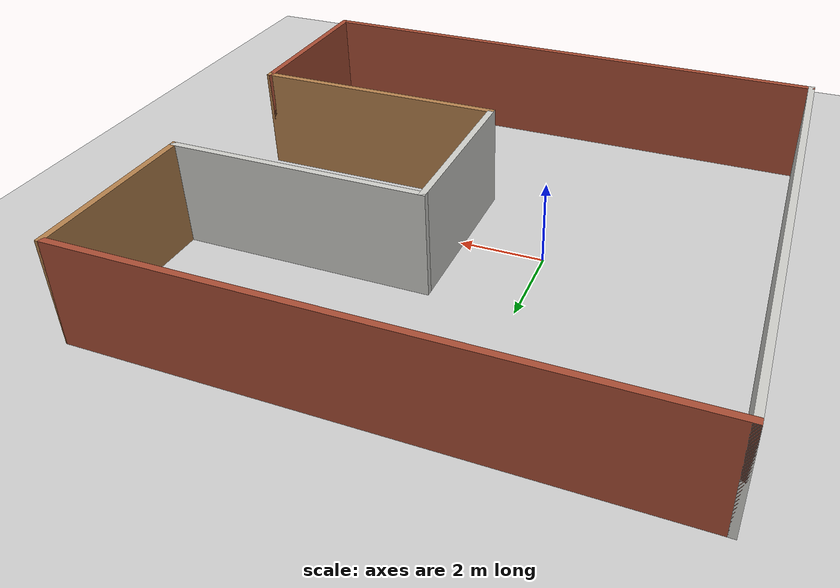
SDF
<sdf version="1.6">
 <world name="default">
  <light name="sun" type="directional">
   <pose>0 0 10 0 -0 0</pose>
   <diffuse>0.8 0.8 0.8 1</diffuse>
   <specular>0.2 0.2 0.2 1</specular>
   <attenuation>
    <range>1000</range>
    <constant>0.9</constant>
    <linear>0.01</linear>
    <quadratic>0.001</quadratic>
   </attenuation>
   <direction>-0.5 0.1 -0.9</direction>
  </light>
  <model name="ground_plane">
   <static>1</static>
   <link name="link">
    <collision name="collision">
     <geometry><plane><normal>0 0 1</normal><size>100 100</size></plane></geometry>
     <surface>
      <contact><collide_bitmask>65535</collide_bitmask></contact>
      <friction><ode><mu>100</mu><mu2>50</mu2></ode></friction>
     </surface>
    </collision>
    <visual name="visual">
     <cast_shadows>0</cast_shadows>
     <geometry><plane><normal>0 0 1</normal><size>100 100</size></plane></geometry>
     <material>
      <script><uri>file://media/materials/scripts/gazebo.material</uri><name>Gazebo/Grey</name></script>
     </material>
    </visual>
   </link>
  </model>
  <gravity>0 0 -9.8</gravity>
  <magnetic_field>6e-06 2.3e-05 -4.2e-05</magnetic_field>
  <atmosphere type="adiabatic"/>
  <physics name="default_physics" default="0" type="ode">
   <max_step_size>0.001</max_step_size>
   <real_time_factor>1</real_time_factor>
   <real_time_update_rate>1000</real_time_update_rate>
  </physics>
  <scene><ambient>0.4 0.4 0.4 1</ambient><background>0.7 0.7 0.7 1</background><shadows>1</shadows></scene>
  <spherical_coordinates>
   <surface_model>EARTH_WGS84</surface_model>
   <latitude_deg>0</latitude_deg>
   <longitude_deg>0</longitude_deg>
   <elevation>0</elevation>
   <heading_deg>0</heading_deg>
  </spherical_coordinates>
  <model name="MyWorld">
   <pose>1.5 0 0 0 -0 0</pose>
   <link name="Wall_0">
    <collision name="Wall_0_Collision">
     <geometry><box><size>13.15 0.15 2.5</size></box></geometry>
     <pose>0 0 1.25 0 -0 0</pose>
    </collision>
    <visual name="Wall_0_Visual">
     <pose>0 0 1.25 0 -0 0</pose>
     <geometry><box><size>13.15 0.15 2.5</size></box></geometry>
     <material>
      <script><uri>file://media/materials/scripts/gazebo.material</uri><name>Gazebo/Bricks</name></script>
      <ambient>1 1 1 1</ambient>
     </material>
     <meta><layer>0</layer></meta>
    </visual>
    <pose>0 6 0 0 -0 0</pose>
   </link>
   <link name="Wall_10">
    <collision name="Wall_10_Collision">
     <geometry><box><size>4.15 0.15 2.5</size></box></geometry>
     <pose>0 0 1.25 0 -0 0</pose>
    </collision>
    <visual name="Wall_10_Visual">
     <pose>0 0 1.25 0 -0 0</pose>
     <geometry><box><size>4.15 0.15 2.5</size></box></geometry>
     <material>
      <script><uri>file://media/materials/scripts/gazebo.material</uri><name>Gazebo/CeilingTiled</name></script>
      <ambient>0.996078 0.47451 0.0196078 1</ambient>
     </material>
     <meta><layer>0</layer></meta>
    </visual>
    <pose>0.5 0 0 0 0 -1.5708</pose>
   </link>
   <link name="Wall_12">
    <collision name="Wall_12_Collision">
     <geometry><box><size>6.15 0.15 2.5</size></box></geometry>
     <pose>0 0 1.25 0 -0 0</pose>
    </collision>
    <visual name="Wall_12_Visual">
     <pose>0 0 1.25 0 -0 0</pose>
     <geometry><box><size>6.15 0.15 2.5</size></box></geometry>
     <material>
      <script><uri>file://media/materials/scripts/gazebo.material</uri><name>Gazebo/Wood</name></script>
      <ambient>1 1 1 1</ambient>
     </material>
     <meta><layer>0</layer></meta>
    </visual>
    <pose>3.5 -2 0 0 -0 0</pose>
   </link>
   <link name="Wall_14">
    <collision name="Wall_14_Collision">
     <geometry><box><size>4.15 0.15 2.5</size></box></geometry>
     <pose>0 0 1.25 0 -0 0</pose>
    </collision>
    <visual name="Wall_14_Visual">
     <pose>0 0 1.25 0 -0 0</pose>
     <geometry><box><size>4.15 0.15 2.5</size></box></geometry>
     <material>
      <script><uri>file://media/materials/scripts/gazebo.material</uri><name>Gazebo/Bricks</name></script>
      <ambient>0.996078 0.47451 0.0196078 1</ambient>
     </material>
     <meta><layer>0</layer></meta>
    </visual>
    <pose>6.5 -4 0 0 0 -1.5708</pose>
   </link>
   <link name="Wall_2">
    <collision name="Wall_2_Collision">
     <geometry><box><size>12.15 0.15 2.5</size></box></geometry>
     <pose>0 0 1.25 0 -0 0</pose>
    </collision>
    <visual name="Wall_2_Visual">
     <pose>0 0 1.25 0 -0 0</pose>
     <geometry><box><size>12.15 0.15 2.5</size></box></geometry>
     <material>
      <script><uri>file://media/materials/scripts/gazebo.material</uri><name>Gazebo/CeilingTiled</name></script>
      <ambient>1 0.764706 0.305882 1</ambient>
     </material>
     <meta><layer>0</layer></meta>
    </visual>
    <pose>-6.5 0 0 0 0 -1.5708</pose>
   </link>
   <link name="Wall_4">
    <collision name="Wall_4_Collision">
     <geometry><box><size>13.15 0.15 2.5</size></box></geometry>
     <pose>0 0 1.25 0 -0 0</pose>
    </collision>
    <visual name="Wall_4_Visual">
     <pose>0 0 1.25 0 -0 0</pose>
     <geometry><box><size>13.15 0.15 2.5</size></box></geometry>
     <material>
      <script><uri>file://media/materials/scripts/gazebo.material</uri><name>Gazebo/Bricks</name></script>
      <ambient>0.435294 0.796078 0.67451 1</ambient>
     </material>
     <meta><layer>0</layer></meta>
    </visual>
    <pose>0 -6 0 0 -0 0</pose>
   </link>
   <link name="Wall_6">
    <collision name="Wall_6_Collision">
     <geometry><box><size>4.15 0.15 2.5</size></box></geometry>
     <pose>0 0 1.25 0 -0 0</pose>
    </collision>
    <visual name="Wall_6_Visual">
     <pose>0 0 1.25 0 -0 0</pose>
     <geometry><box><size>4.15 0.15 2.5</size></box></geometry>
     <material>
      <script><uri>file://media/materials/scripts/gazebo.material</uri><name>Gazebo/Wood</name></script>
      <ambient>1 0.764706 0.305882 1</ambient>
     </material>
     <meta><layer>0</layer></meta>
    </visual>
    <pose>6.5 4 0 0 0 -1.5708</pose>
   </link>
   <link name="Wall_8">
    <collision name="Wall_8_Collision">
     <geometry><box><size>6.15 0.15 2.5</size></box></geometry>
     <pose>0 0 1.25 0 -0 0</pose>
    </collision>
    <visual name="Wall_8_Visual">
     <pose>0 0 1.25 0 -0 0</pose>
     <geometry><box><size>6.15 0.15 2.5</size></box></geometry>
     <material>
      <script><uri>file://media/materials/scripts/gazebo.material</uri><name>Gazebo/CeilingTiled</name></script>
      <ambient>0.435294 0.796078 0.67451 1</ambient>
     </material>
     <meta><layer>0</layer></meta>
    </visual>
    <pose>3.5 2 0 0 -0 3.14159</pose>
   </link>
   <static>1</static>
  </model>
 </world>
</sdf>
